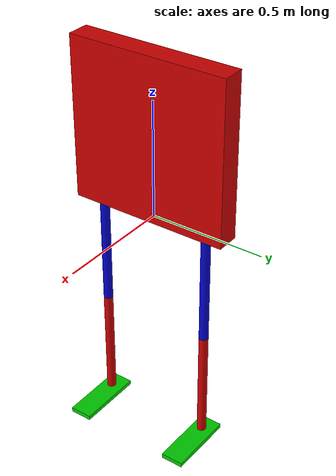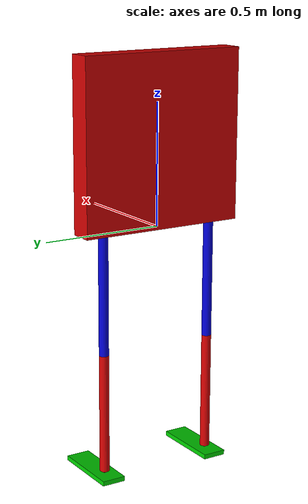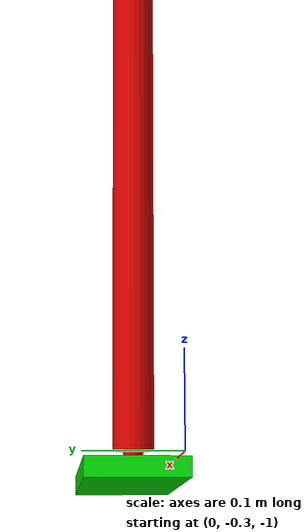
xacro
<?xml version="1.0"?>
<robot name="biped" xmlns:xacro="http://www.ros.org/wiki/xacro">
    <material name="red">
        <color rgba="0.8 0 0 1"/>
    </material>

    <material name="green">
        <color rgba="0 0.8 0 1"/>
    </material>

    <material name="blue">
        <color rgba="0 0 0.8 1"/>
    </material>

    <material name="white">
        <color rgba="1 1 1 1" />
    </material>

    <material name="black">
        <color rgba="0 0 0 1" />
    </material>

    <xacro:macro name="empty_inertial" params="">
        <inertial>
            <mass value="0.0001" />
            <inertia
                    ixx="0.0001" ixy="0.0" ixz="0.0"
                    iyy="0.0001" iyz="0.0"
                    izz="0.0001" />
        </inertial>
    </xacro:macro>

    <xacro:macro name="empty_gazebo_link" params="">
        <visual>
            <geometry>
                <sphere radius="0.01"/>
            </geometry>
            <material name="red" />
        </visual>
        <xacro:empty_inertial />
    </xacro:macro>

    <xacro:macro name="cylinder_inertial" params="r l m">
        <inertial>
            <mass value="${m}" />
            <inertia
                    ixx="${(1.0/12.0)*m*(3.0*r*r + l*l)}" ixy="0.0" ixz="0.0"
                    iyy="${(1.0/12.0)*m*(3.0*r*r + l*l)}" iyz="0.0"
                    izz="${(1.0/2.0)*m*r*r}" />
        </inertial>
    </xacro:macro>

    <xacro:macro name="box_inertial" params="w h d m">
        <inertial>
            <mass value="${m}" />
            <inertia
                    ixx="${(1.0/12.0)*m*(h*h + d*d)}" ixy="0.0" ixz="0.0"
                    iyy="${(1.0/12.0)*m*(w*w + d*d)}" iyz="0.0"
                    izz="${(1.0/12.0)*m*(w*w + h*h)}" />
        </inertial>
    </xacro:macro>

    <link name="base_link" />

    <link name="torso_link">
         <visual>
            <origin xyz="0 0 0" rpy="0 0 0" />
            <geometry>
                <box size="0.1 0.7 0.7"/>
            </geometry>
            <material name="red" />
        </visual>
        <collision>
            <origin xyz="0 0 0" rpy="0 0 0" />
            <geometry>
                <box size="0.1 0.7 0.7"/>
            </geometry>
        </collision>
        <xacro:box_inertial w="0.1" h="0.7" d="0.7" m="2.0" />
    </link>

    <joint name="torso_fixed" type="fixed">
        <origin xyz="0 0 0.35" rpy="0 0 0" />
        <parent link="base_link"/>
        <child link="torso_link" />
    </joint>

    <link name="imu_link">
        <xacro:empty_gazebo_link />
    </link>

    <joint name="imu_fixed" type="fixed">
        <origin xyz="0 0 0" rpy="0 0 0" />
        <parent link="torso_link" />
        <child link="imu_link" />
    </joint>

    <xacro:macro name="revolute_transmission" params="joint_name reduction">
        <transmission name="${joint_name}_transmission">
            <type>transmission_interface/SimpleTransmission</type>
            <actuator name="${joint_name}_motor">
                <mechanicalReduction>${reduction}</mechanicalReduction>
            </actuator>
            <joint name="${joint_name}">
                <hardwareInterface>hardware_interface/EffortJointInterface</hardwareInterface>
            </joint>
        </transmission>
    </xacro:macro>

    <xacro:macro name="biped_leg" params="parent_link prefix reflect">
        <link name="${prefix}_pelvis_yaw_link">
            <xacro:empty_gazebo_link />
        </link>

        <link name="${prefix}_pelvis_roll_link">
            <xacro:empty_gazebo_link />
        </link>

        <link name="${prefix}_pelvis_pitch_link">
            <visual>
                <origin xyz="0 0 -0.25"/>
                <material name="blue"/>
                <geometry>
                    <cylinder radius="0.02" length="0.5" />
                </geometry>
            </visual>
            <collision>
                <origin xyz="0 0 -0.25"/>
                <geometry>
                    <cylinder radius="0.02" length="0.5"/>
                </geometry>
            </collision>
            <xacro:cylinder_inertial r="0.02" l="0.5" m="0.25"/>
        </link>

        <joint name="${prefix}_pelvis_yaw" type="revolute">
            <parent link="${parent_link}" />
            <child link="${prefix}_pelvis_yaw_link" />
            <axis xyz="0 0 1" />
            <origin xyz="0 ${reflect*0.25} 0" rpy="0 0 0" />
            <limit effort="10.0" lower="-${pi/3}" upper="${pi/3}" velocity="5.0" />
        </joint>

        <joint name="${prefix}_pelvis_roll" type="revolute">
            <parent link="${prefix}_pelvis_yaw_link" />
            <child link="${prefix}_pelvis_roll_link" />
            <axis xyz="1 0 0" />
            <origin xyz="0 0 0" rpy="0 0 0" />
            <limit effort="10.0" lower="-${pi/3}" upper="${pi/3}" velocity="5.0" />
        </joint>

        <joint name="${prefix}_pelvis_pitch" type="revolute">
            <parent link="${prefix}_pelvis_roll_link" />
            <child link="${prefix}_pelvis_pitch_link" />
            <axis xyz="0 1 0" />
            <origin xyz="0 0 0" rpy="0 0 0" />
            <limit effort="10.0" lower="-${pi/3}" upper="${pi/3}" velocity="5.0" />
        </joint>

        <link name="${prefix}_knee_pitch_link">
            <visual>
                <origin xyz="0 0 -0.25"/>
                <geometry>
                    <cylinder radius="0.02" length="0.5" />
                </geometry>
                <material name="red"/>
            </visual>
            <collision>
                <origin xyz="0 0 -0.25"/>
                <geometry>
                    <cylinder radius="0.02" length="0.5" />
                </geometry>
            </collision>
            <xacro:cylinder_inertial r="0.02" l="0.5" m="0.25"/>
        </link>

        <joint name="${prefix}_knee_pitch" type="revolute">
            <parent link="${prefix}_pelvis_pitch_link" />
            <child link="${prefix}_knee_pitch_link" />
            <axis xyz="0 1 0" />
            <origin xyz="0 0 -0.5" rpy="0 0 0" />
            <limit effort="10.0" lower="0" upper="${pi/2}" velocity="5.0" />
        </joint>

        <link name="${prefix}_ankle_pitch_link">
            <xacro:empty_gazebo_link />
        </link>

        <link name="${prefix}_ankle_roll_link">
            <visual>
                <origin xyz="0.075 0 -0.02"/>
                <geometry>
                    <box size="0.3 0.1 0.02" />
                </geometry>
                <material name="green" />
            </visual>
            <collision>
                <origin xyz="0.075 0 -0.02"/>
                <geometry>
                    <box size="0.3 0.1 0.02" />
                </geometry>
            </collision>
            <xacro:box_inertial w="0.3" h="0.1" d="0.02" m="0.1"/>
        </link>

        <joint name="${prefix}_ankle_pitch" type="revolute">
            <parent link="${prefix}_knee_pitch_link" />
            <child link="${prefix}_ankle_pitch_link" />
            <axis xyz="0 1 0" />
            <origin xyz="0 0 -0.5" rpy="0 0 0" />
            <limit effort="10.0" lower="-${pi/3}" upper="${pi/3}" velocity="5.0" />
        </joint>

        <joint name="${prefix}_ankle_roll" type="revolute">
            <parent link="${prefix}_ankle_pitch_link" />
            <child link="${prefix}_ankle_roll_link" />
            <axis xyz="1 0 0" />
            <origin xyz="0 0 0" rpy="0 0 0" />
            <limit effort="10.0" lower="-${pi/3}" upper="${pi/3}" velocity="5.0" />
        </joint>

        <link name="${prefix}_ankle">
            <xacro:empty_gazebo_link />
        </link>

        <joint name="${prefix}_ankle_fixed" type="fixed">
            <parent link="${prefix}_ankle_roll_link" />
            <child link="${prefix}_ankle" />
        </joint>

        <xacro:revolute_transmission joint_name="${prefix}_pelvis_yaw" reduction="1" />
        <xacro:revolute_transmission joint_name="${prefix}_pelvis_roll" reduction="1" />
        <xacro:revolute_transmission joint_name="${prefix}_pelvis_pitch" reduction="1" />
        <xacro:revolute_transmission joint_name="${prefix}_knee_pitch" reduction="1" />
        <xacro:revolute_transmission joint_name="${prefix}_ankle_pitch" reduction="1" />
        <xacro:revolute_transmission joint_name="${prefix}_ankle_roll" reduction="1" />
    </xacro:macro>

    <xacro:macro name="biped_left_leg" params="parent_link">
        <xacro:biped_leg prefix="l" parent_link="${parent_link}" reflect="1" />
    </xacro:macro>

    <xacro:macro name="biped_right_leg" params="parent_link">
        <xacro:biped_leg prefix="r" parent_link="${parent_link}" reflect="-1" />
    </xacro:macro>

    <xacro:biped_left_leg parent_link="base_link" />
    <xacro:biped_right_leg parent_link="base_link" />

    <gazebo>
        <plugin name="gazebo_ros_control" filename="libgazebo_ros_control.so">
            <robotNamespace>/biped</robotNamespace>
            <robotSimType>gazebo_ros_control/DefaultRobotHWSim</robotSimType>
        </plugin>
    </gazebo>

    <gazebo reference="l_ankle_roll_link">
        <material>Gazebo/FlatBlack</material>
        <kp>1000000.0</kp>
        <kd>100.0</kd>
        <mu1>1.0</mu1>
        <mu2>1.0</mu2>
        <fdir1>1 0 0</fdir1>
        <maxVel>1.0</maxVel>
        <minDepth>0.0</minDepth>
    </gazebo>
    <gazebo reference="r_ankle_roll_link">
        <material>Gazebo/FlatBlack</material>
        <kp>1000000.0</kp>
        <kd>100.0</kd>
        <mu1>1.0</mu1>
        <mu2>1.0</mu2>
        <fdir1>1 0 0</fdir1>
        <maxVel>1.0</maxVel>
        <minDepth>0.0</minDepth>
    </gazebo>

    <gazebo reference="r_ankle_roll">
        <provideFeedback>true</provideFeedback>
    </gazebo>

    <gazebo reference="l_ankle_roll">
        <provideFeedback>true</provideFeedback>
    </gazebo>

    <gazebo>
        <plugin filename="libgazebo_ros_ft_sensor.so" name="r_ft_sensor">
            <robotNamespace>/biped</robotNamespace>
            <updateRate>100.0</updateRate>
            <topicName>r_ankle_ft_sensor</topicName>
            <jointName>r_ankle_roll</jointName>
            <noise>
                <type>gaussian</type>
                <mean>0.0</mean>
                <stddev>0.0</stddev>
            </noise>
        </plugin>
        <plugin filename="libgazebo_ros_ft_sensor.so" name="l_ft_sensor">
            <robotNamespace>/biped</robotNamespace>
            <updateRate>100.0</updateRate>
            <topicName>l_ankle_ft_sensor</topicName>
            <jointName>l_ankle_roll</jointName>
            <noise>
                <type>gaussian</type>
                <mean>0.0</mean>
                <stddev>0.0</stddev>
            </noise>
        </plugin>
    </gazebo>

    <gazebo reference="imu_link">
        <gravity>true</gravity>
        <sensor name="imu_sensor" type="imu">
            <always_on>true</always_on>
            <update_rate>100</update_rate>
            <visualize>true</visualize>
            <topic>__default_topic__</topic>
            <plugin filename="libgazebo_ros_imu_sensor.so" name="imu_plugin">
                <robotNamespace>/biped</robotNamespace>
                <topicName>imu</topicName>
                <bodyName>imu_link</bodyName>
                <updateRateHZ>10</updateRateHZ>
                <gaussianNoise>0.0</gaussianNoise>
                <xyzOffset>0 0 0</xyzOffset>
                <rpyOffset>0 0 0</rpyOffset>
                <frameName>imu_link</frameName>
            </plugin>
            <pose>0 0 0 0 0 0</pose>
        </sensor>
    </gazebo>
</robot>
